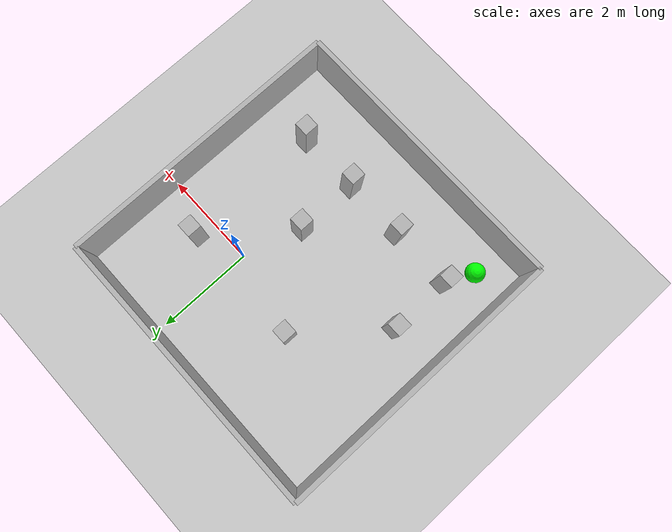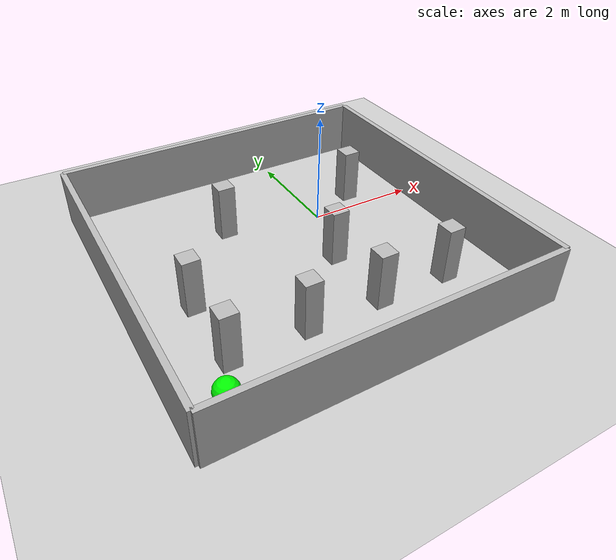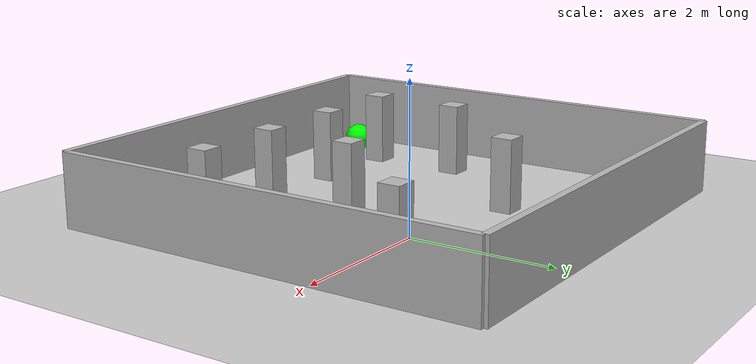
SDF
<?xml version="1.0"?>
<sdf version="1.6">
  <world name="martha_test_world_7">
    <physics name="default_physics" type="ode">
      <max_step_size>0.001</max_step_size>
      <real_time_update_rate>1000</real_time_update_rate>
      <real_time_factor>1.0</real_time_factor>
    </physics>
    <gravity>0 0 -9.81</gravity>
    <include><uri>model://sun</uri></include>
    <include><uri>model://ground_plane</uri></include>
    <plugin name="gazebo_ros_state" filename="libgazebo_ros_state.so">
      <ros><namespace>/gazebo</namespace></ros>
      <update_rate>50.0</update_rate>
    </plugin>

    <!-- Arena center: (-1.0, -0.8). -->
    <model name="wall_left"><static>true</static><pose>-1.0 2.2 0.5 0 0 0</pose><link name="link"><collision name="collision"><geometry><box><size>6 0.1 1</size></box></geometry></collision><visual name="visual"><geometry><box><size>6 0.1 1</size></box></geometry></visual></link></model>
    <model name="wall_right"><static>true</static><pose>-1.0 -3.8 0.5 0 0 0</pose><link name="link"><collision name="collision"><geometry><box><size>6 0.1 1</size></box></geometry></collision><visual name="visual"><geometry><box><size>6 0.1 1</size></box></geometry></visual></link></model>
    <model name="wall_front"><static>true</static><pose>2.0 -0.8 0.5 0 0 0</pose><link name="link"><collision name="collision"><geometry><box><size>0.1 6 1</size></box></geometry></collision><visual name="visual"><geometry><box><size>0.1 6 1</size></box></geometry></visual></link></model>
    <model name="wall_back"><static>true</static><pose>-4.0 -0.8 0.5 0 0 0</pose><link name="link"><collision name="collision"><geometry><box><size>0.1 6 1</size></box></geometry></collision><visual name="visual"><geometry><box><size>0.1 6 1</size></box></geometry></visual></link></model>

    <!-- Pillars are 0.30 m wide with at least 1.00 m clear between neighbors. -->
    <model name="pillar_1"><static>true</static><pose>-3.0 -2.5 0.5 0 0 0</pose><link name="link"><collision name="collision"><geometry><box><size>0.3 0.3 1</size></box></geometry></collision><visual name="visual"><geometry><box><size>0.3 0.3 1</size></box></geometry></visual></link></model>
    <model name="pillar_2"><static>true</static><pose>-1.7 -2.5 0.5 0 0 0</pose><link name="link"><collision name="collision"><geometry><box><size>0.3 0.3 1</size></box></geometry></collision><visual name="visual"><geometry><box><size>0.3 0.3 1</size></box></geometry></visual></link></model>
    <model name="pillar_3"><static>true</static><pose>-0.4 -2.5 0.5 0 0 0</pose><link name="link"><collision name="collision"><geometry><box><size>0.3 0.3 1</size></box></geometry></collision><visual name="visual"><geometry><box><size>0.3 0.3 1</size></box></geometry></visual></link></model>
    <model name="pillar_4"><static>true</static><pose>0.9 -2.5 0.5 0 0 0</pose><link name="link"><collision name="collision"><geometry><box><size>0.3 0.3 1</size></box></geometry></collision><visual name="visual"><geometry><box><size>0.3 0.3 1</size></box></geometry></visual></link></model>
    <model name="pillar_5"><static>true</static><pose>-3.0 -1.2 0.5 0 0 0</pose><link name="link"><collision name="collision"><geometry><box><size>0.3 0.3 1</size></box></geometry></collision><visual name="visual"><geometry><box><size>0.3 0.3 1</size></box></geometry></visual></link></model>
    <model name="pillar_6"><static>true</static><pose>-1.7 0.4 0.5 0 0 0</pose><link name="link"><collision name="collision"><geometry><box><size>0.3 0.3 1</size></box></geometry></collision><visual name="visual"><geometry><box><size>0.3 0.3 1</size></box></geometry></visual></link></model>
    <model name="pillar_7"><static>true</static><pose>-0.4 -1.2 0.5 0 0 0</pose><link name="link"><collision name="collision"><geometry><box><size>0.3 0.3 1</size></box></geometry></collision><visual name="visual"><geometry><box><size>0.3 0.3 1</size></box></geometry></visual></link></model>
    <model name="pillar_8"><static>true</static><pose>0.9 0.4 0.5 0 0 0</pose><link name="link"><collision name="collision"><geometry><box><size>0.3 0.3 1</size></box></geometry></collision><visual name="visual"><geometry><box><size>0.3 0.3 1</size></box></geometry></visual></link></model>

    <model name="goal_point">
      <static>true</static><pose>-3.3 -3.1 0.2 0 0 0</pose>
      <link name="link"><visual name="visual"><geometry><sphere><radius>0.2</radius></sphere></geometry><material><ambient>0 1 0 1</ambient><diffuse>0 1 0 1</diffuse></material></visual></link>
    </model>
  </world>
</sdf>
